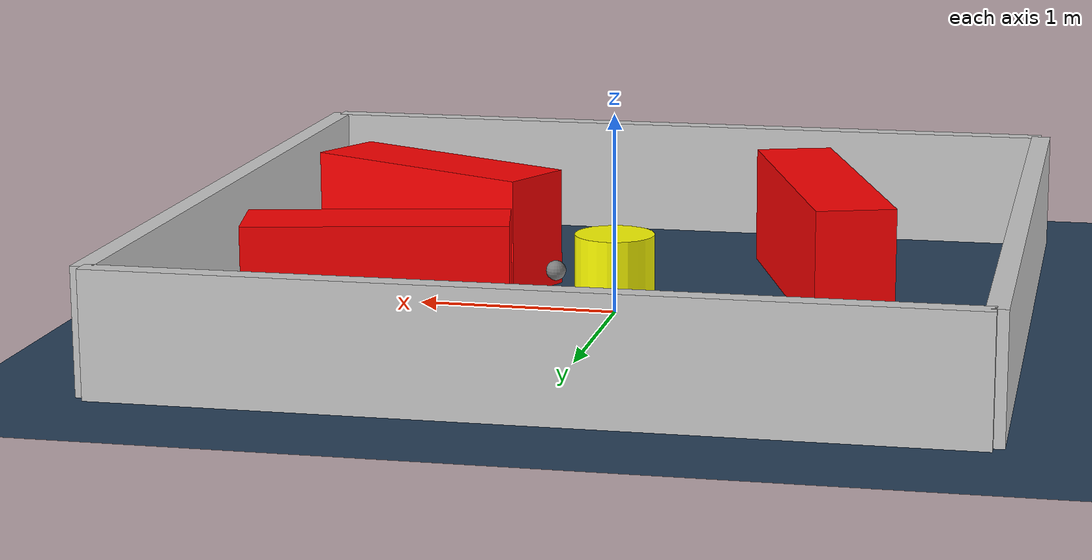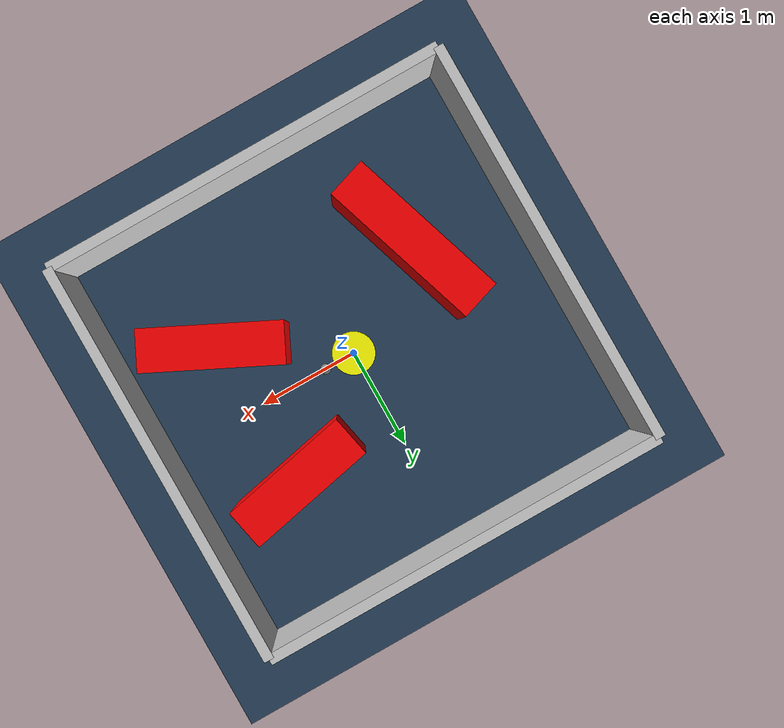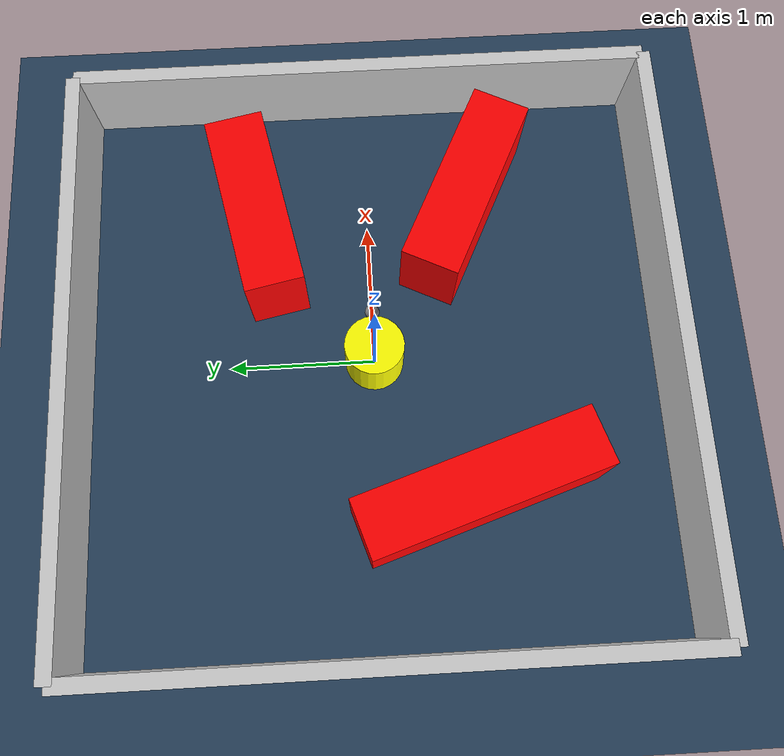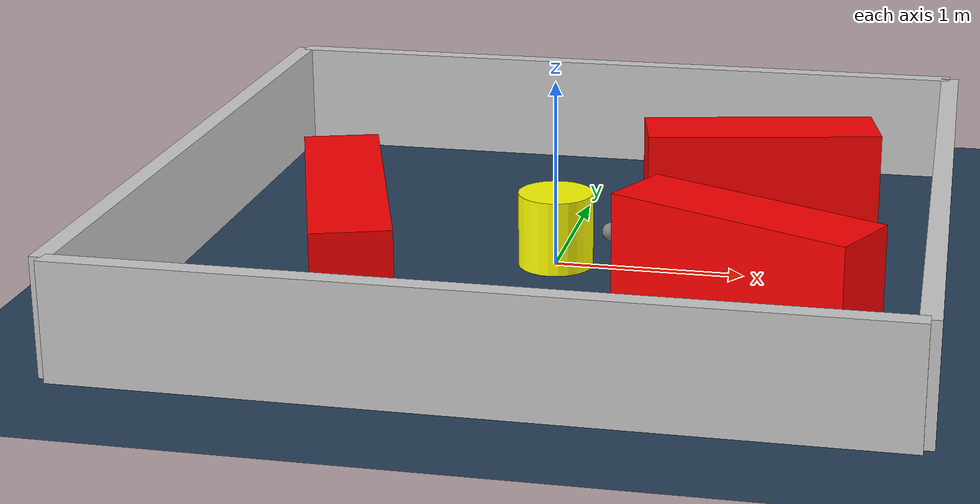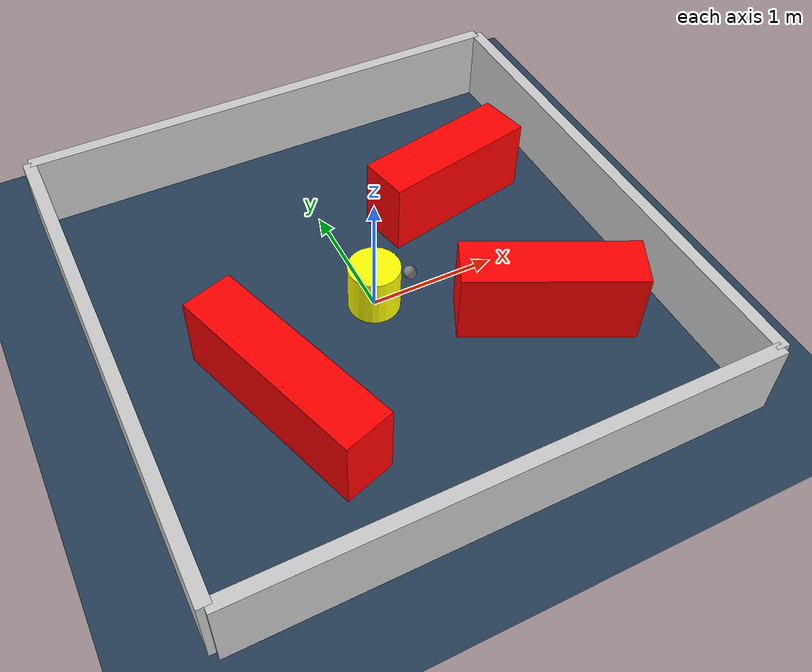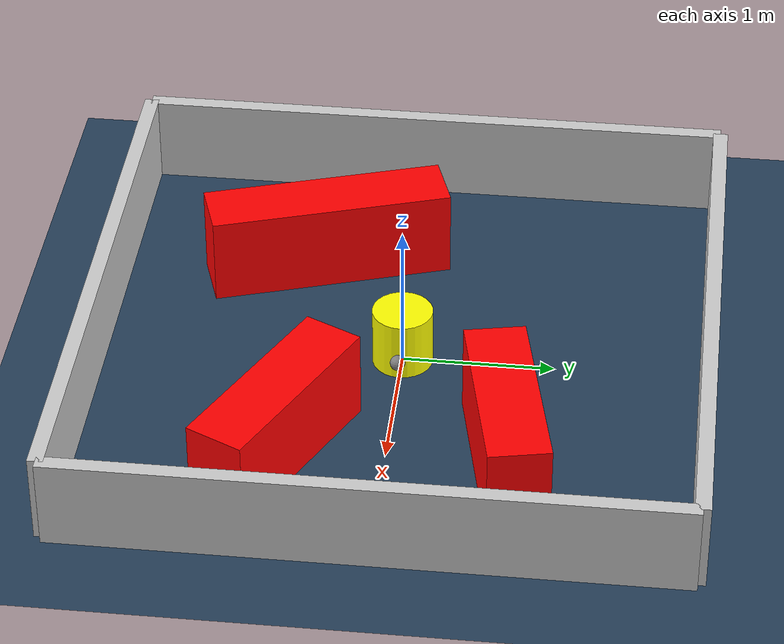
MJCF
<?xml version="1.0" ?>
<mujoco model="generated_environment">
  <option timestep="0.01" integrator="RK4" cone="elliptic"/>
  <default>
    <geom density="1"/>
  </default>
  <asset>
    <texture builtin="gradient" height="3072" rgb1="0.3 0.5 0.7" rgb2="0 0 0" type="skybox" width="512"/>
    <texture builtin="checker" height="300" mark="edge" markrgb="0.8 0.8 0.8" name="groundplane" rgb1="0.2 0.3 0.4" rgb2="0.1 0.2 0.3" type="2d" width="300"/>
    <material name="groundplane" reflectance="0.2" texrepeat="5 5" texture="groundplane" texuniform="true"/>
    <material name="robot" rgba="0.0 1.0 0.0 1"/>
  </asset>
  <worldbody>
    <light dir="0 0 -1" directional="true" pos="0 0 1.5"/>
    <geom condim="4" friction="1.0 0.005 0.001" material="groundplane" name="floor" size="0 0 0.05" type="plane"/>
    <body name="walls">
      <geom name="wall_1" condim="4" pos="-2.0 0.0 0.3" rgba="0.800000011920929 0.800000011920929 0.800000011920929 1.0" size="0.05 2.0 0.3" type="box"/>
      <geom name="wall_2" condim="4" pos="2.0 0.0 0.3" rgba="0.800000011920929 0.800000011920929 0.800000011920929 1.0" size="0.05 2.0 0.3" type="box"/>
      <geom name="wall_3" condim="4" pos="0.0 -2.0 0.3" rgba="0.800000011920929 0.800000011920929 0.800000011920929 1.0" size="2.0 0.05 0.3" type="box"/>
      <geom name="wall_4" condim="4" pos="0.0 2.0 0.3" rgba="0.800000011920929 0.800000011920929 0.800000011920929 1.0" size="2.0 0.05 0.3" type="box"/>
    </body>
    <body name="robot">
      <joint name="joint_x" type="slide" pos="0 0 0" axis="1 0 0"/>
      <joint name="joint_y" type="slide" pos="0 0 0" axis="0 1 0"/>
      <geom name="robot" type="sphere" pos="0.3 0.0 0.2" size="0.05" mass="5." friction="1.0 0.005 0.0001" condim="4" rgba="0.5 0.5 0.5 1.0"/>
      <site name="sensor_ball"/>
    </body>
    <body name="obstacle_movable_1">
      <geom name="obstacle_movable_1" condim="4" pos="0.0 0.0 0.2" euler="0 0 0.0" friction="1.0 0.005 0.001" rgba="1.0 1.0 0.0 1.0" size="0.2 0.2 0.0" type="cylinder" mass="0.1"/>
      <joint type="free"/>
    </body>
    <body name="obstacle_2_static">
      <geom name="obstacle_2_static" condim="4" pos="1.0036120301562939 0.7595092835255499 0.3" euler="0 0 11.857801367028955" friction="1.0 0.005 0.001" rgba="1 0 0 1" size="0.6331209050068858 0.2 0.3" type="box"/>
    </body>
    <body name="obstacle_3_static">
      <geom name="obstacle_3_static" condim="4" pos="1.0782944614639152 -0.6798487977721388 0.3" euler="0 0 153.86061349782952" friction="1.0 0.005 0.001" rgba="1 0 0 1" size="0.6645179081756322 0.2 0.3" type="box"/>
    </body>
    <body name="obstacle_4_static">
      <geom name="obstacle_4_static" condim="4" pos="-0.9633443046097405 -0.6197333021436906 0.3" euler="0 0 108.19065820719206" friction="1.0 0.005 0.001" rgba="1 0 0 1" size="0.8105747784559727 0.2 0.3" type="box"/>
    </body>
  </worldbody>
  <actuator>
    <motor name="actuator_x" joint="joint_x" gear="1" ctrlrange="-1 1"/>
    <motor name="actuator_y" joint="joint_y" gear="1" ctrlrange="-1 1"/>
  </actuator>
</mujoco>
